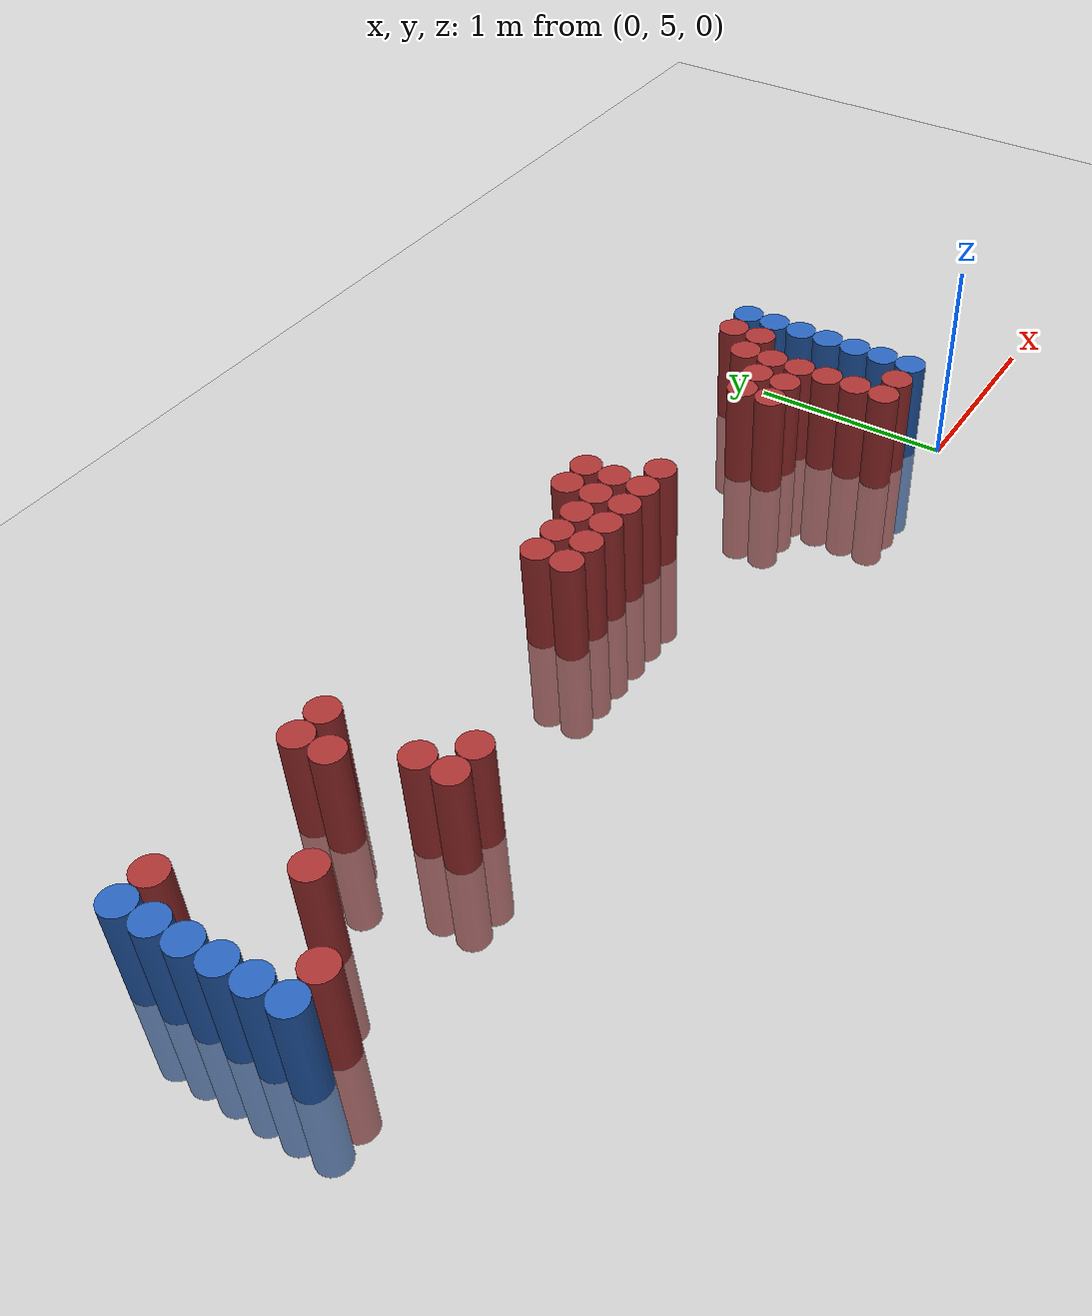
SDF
<sdf version="1.6">
 <world name="default">
  <model name="ground_plane">
   <static>1</static>
   <link name="link">
    <collision name="collision">
     <geometry><plane><normal>0 0 1</normal><size>100 100</size></plane></geometry>
     <surface><friction><ode><mu>100</mu><mu2>50</mu2></ode></friction></surface>
    </collision>
    <visual name="visual">
     <cast_shadows>0</cast_shadows>
     <geometry><plane><normal>0 0 1</normal><size>100 100</size></plane></geometry>
     <material>
      <script><uri>file://media/materials/scripts/gazebo.material</uri><name>Gazebo/Grey</name></script>
     </material>
    </visual>
   </link>
  </model>
  <model name="unit_cylinder_97">
   <static>1</static>
   <pose>-4.425000 5.325000 0.000000 0.000000 0.000000 0.000000</pose>
   <link name="link">
    <inertial>
     <mass>1</mass>
     <inertia><ixx>0.145833</ixx><ixy>0</ixy><ixz>0</ixz><iyy>0.145833</iyy><iyz>0</iyz><izz>0.125</izz></inertia>
    </inertial>
    <collision name="collision">
     <geometry><cylinder><radius>0.075000</radius><length>1</length></cylinder></geometry>
    </collision>
    <visual name="visual">
     <geometry><cylinder><radius>0.075000</radius><length>1</length></cylinder></geometry>
     <material>
      <ambient>0.152000 0.379000 0.720000 1</ambient>
      <diffuse>0.152000 0.379000 0.720000 1</diffuse>
     </material>
     <material>
      <script><name>Gazebo/Grey</name><uri>file://media/materials/scripts/gazebo.material</uri></script>
     </material>
    </visual>
   </link>
  </model>
  <model name="unit_cylinder_98">
   <static>1</static>
   <pose>-4.425000 5.475000 0.000000 0.000000 0.000000 0.000000</pose>
   <link name="link">
    <inertial>
     <mass>1</mass>
     <inertia><ixx>0.145833</ixx><ixy>0</ixy><ixz>0</ixz><iyy>0.145833</iyy><iyz>0</iyz><izz>0.125</izz></inertia>
    </inertial>
    <collision name="collision">
     <geometry><cylinder><radius>0.075000</radius><length>1</length></cylinder></geometry>
    </collision>
    <visual name="visual">
     <geometry><cylinder><radius>0.075000</radius><length>1</length></cylinder></geometry>
     <material>
      <ambient>0.152000 0.379000 0.720000 1</ambient>
      <diffuse>0.152000 0.379000 0.720000 1</diffuse>
     </material>
     <material>
      <script><name>Gazebo/Grey</name><uri>file://media/materials/scripts/gazebo.material</uri></script>
     </material>
    </visual>
   </link>
  </model>
  <model name="unit_cylinder_99">
   <static>1</static>
   <pose>-4.425000 5.625000 0.000000 0.000000 0.000000 0.000000</pose>
   <link name="link">
    <inertial>
     <mass>1</mass>
     <inertia><ixx>0.145833</ixx><ixy>0</ixy><ixz>0</ixz><iyy>0.145833</iyy><iyz>0</iyz><izz>0.125</izz></inertia>
    </inertial>
    <collision name="collision">
     <geometry><cylinder><radius>0.075000</radius><length>1</length></cylinder></geometry>
    </collision>
    <visual name="visual">
     <geometry><cylinder><radius>0.075000</radius><length>1</length></cylinder></geometry>
     <material>
      <ambient>0.152000 0.379000 0.720000 1</ambient>
      <diffuse>0.152000 0.379000 0.720000 1</diffuse>
     </material>
     <material>
      <script><name>Gazebo/Grey</name><uri>file://media/materials/scripts/gazebo.material</uri></script>
     </material>
    </visual>
   </link>
  </model>
  <model name="unit_cylinder_100">
   <static>1</static>
   <pose>-4.425000 5.775000 0.000000 0.000000 0.000000 0.000000</pose>
   <link name="link">
    <inertial>
     <mass>1</mass>
     <inertia><ixx>0.145833</ixx><ixy>0</ixy><ixz>0</ixz><iyy>0.145833</iyy><iyz>0</iyz><izz>0.125</izz></inertia>
    </inertial>
    <collision name="collision">
     <geometry><cylinder><radius>0.075000</radius><length>1</length></cylinder></geometry>
    </collision>
    <visual name="visual">
     <geometry><cylinder><radius>0.075000</radius><length>1</length></cylinder></geometry>
     <material>
      <ambient>0.152000 0.379000 0.720000 1</ambient>
      <diffuse>0.152000 0.379000 0.720000 1</diffuse>
     </material>
     <material>
      <script><name>Gazebo/Grey</name><uri>file://media/materials/scripts/gazebo.material</uri></script>
     </material>
    </visual>
   </link>
  </model>
  <model name="unit_cylinder_101">
   <static>1</static>
   <pose>-4.425000 5.925000 0.000000 0.000000 0.000000 0.000000</pose>
   <link name="link">
    <inertial>
     <mass>1</mass>
     <inertia><ixx>0.145833</ixx><ixy>0</ixy><ixz>0</ixz><iyy>0.145833</iyy><iyz>0</iyz><izz>0.125</izz></inertia>
    </inertial>
    <collision name="collision">
     <geometry><cylinder><radius>0.075000</radius><length>1</length></cylinder></geometry>
    </collision>
    <visual name="visual">
     <geometry><cylinder><radius>0.075000</radius><length>1</length></cylinder></geometry>
     <material>
      <ambient>0.152000 0.379000 0.720000 1</ambient>
      <diffuse>0.152000 0.379000 0.720000 1</diffuse>
     </material>
     <material>
      <script><name>Gazebo/Grey</name><uri>file://media/materials/scripts/gazebo.material</uri></script>
     </material>
    </visual>
   </link>
  </model>
  <model name="unit_cylinder_102">
   <static>1</static>
   <pose>-4.425000 6.075000 0.000000 0.000000 0.000000 0.000000</pose>
   <link name="link">
    <inertial>
     <mass>1</mass>
     <inertia><ixx>0.145833</ixx><ixy>0</ixy><ixz>0</ixz><iyy>0.145833</iyy><iyz>0</iyz><izz>0.125</izz></inertia>
    </inertial>
    <collision name="collision">
     <geometry><cylinder><radius>0.075000</radius><length>1</length></cylinder></geometry>
    </collision>
    <visual name="visual">
     <geometry><cylinder><radius>0.075000</radius><length>1</length></cylinder></geometry>
     <material>
      <ambient>0.152000 0.379000 0.720000 1</ambient>
      <diffuse>0.152000 0.379000 0.720000 1</diffuse>
     </material>
     <material>
      <script><name>Gazebo/Grey</name><uri>file://media/materials/scripts/gazebo.material</uri></script>
     </material>
    </visual>
   </link>
  </model>
  <model name="unit_cylinder_127">
   <static>1</static>
   <pose>-4.275000 5.325000 0.000000 0.000000 0.000000 0.000000</pose>
   <link name="link">
    <inertial>
     <mass>1</mass>
     <inertia><ixx>0.145833</ixx><ixy>0</ixy><ixz>0</ixz><iyy>0.145833</iyy><iyz>0</iyz><izz>0.125</izz></inertia>
    </inertial>
    <collision name="collision">
     <geometry><cylinder><radius>0.075000</radius><length>1</length></cylinder></geometry>
    </collision>
    <visual name="visual">
     <geometry><cylinder><radius>0.075000</radius><length>1</length></cylinder></geometry>
     <material>
      <ambient>0.648000 0.192000 0.192000 1</ambient>
      <diffuse>0.648000 0.192000 0.192000 1</diffuse>
     </material>
     <material>
      <script><name>Gazebo/Grey</name><uri>file://media/materials/scripts/gazebo.material</uri></script>
     </material>
    </visual>
   </link>
  </model>
  <model name="unit_cylinder_128">
   <static>1</static>
   <pose>-4.275000 6.075000 0.000000 0.000000 0.000000 0.000000</pose>
   <link name="link">
    <inertial>
     <mass>1</mass>
     <inertia><ixx>0.145833</ixx><ixy>0</ixy><ixz>0</ixz><iyy>0.145833</iyy><iyz>0</iyz><izz>0.125</izz></inertia>
    </inertial>
    <collision name="collision">
     <geometry><cylinder><radius>0.075000</radius><length>1</length></cylinder></geometry>
    </collision>
    <visual name="visual">
     <geometry><cylinder><radius>0.075000</radius><length>1</length></cylinder></geometry>
     <material>
      <ambient>0.648000 0.192000 0.192000 1</ambient>
      <diffuse>0.648000 0.192000 0.192000 1</diffuse>
     </material>
     <material>
      <script><name>Gazebo/Grey</name><uri>file://media/materials/scripts/gazebo.material</uri></script>
     </material>
    </visual>
   </link>
  </model>
  <model name="unit_cylinder_145">
   <static>1</static>
   <pose>-3.975000 5.625000 0.000000 0.000000 0.000000 0.000000</pose>
   <link name="link">
    <inertial>
     <mass>1</mass>
     <inertia><ixx>0.145833</ixx><ixy>0</ixy><ixz>0</ixz><iyy>0.145833</iyy><iyz>0</iyz><izz>0.125</izz></inertia>
    </inertial>
    <collision name="collision">
     <geometry><cylinder><radius>0.075000</radius><length>1</length></cylinder></geometry>
    </collision>
    <visual name="visual">
     <geometry><cylinder><radius>0.075000</radius><length>1</length></cylinder></geometry>
     <material>
      <ambient>0.648000 0.192000 0.192000 1</ambient>
      <diffuse>0.648000 0.192000 0.192000 1</diffuse>
     </material>
     <material>
      <script><name>Gazebo/Grey</name><uri>file://media/materials/scripts/gazebo.material</uri></script>
     </material>
    </visual>
   </link>
  </model>
  <model name="unit_cylinder_157">
   <static>1</static>
   <pose>-3.525000 5.925000 0.000000 0.000000 0.000000 0.000000</pose>
   <link name="link">
    <inertial>
     <mass>1</mass>
     <inertia><ixx>0.145833</ixx><ixy>0</ixy><ixz>0</ixz><iyy>0.145833</iyy><iyz>0</iyz><izz>0.125</izz></inertia>
    </inertial>
    <collision name="collision">
     <geometry><cylinder><radius>0.075000</radius><length>1</length></cylinder></geometry>
    </collision>
    <visual name="visual">
     <geometry><cylinder><radius>0.075000</radius><length>1</length></cylinder></geometry>
     <material>
      <ambient>0.648000 0.192000 0.192000 1</ambient>
      <diffuse>0.648000 0.192000 0.192000 1</diffuse>
     </material>
     <material>
      <script><name>Gazebo/Grey</name><uri>file://media/materials/scripts/gazebo.material</uri></script>
     </material>
    </visual>
   </link>
  </model>
  <model name="unit_cylinder_158">
   <static>1</static>
   <pose>-3.525000 6.075000 0.000000 0.000000 0.000000 0.000000</pose>
   <link name="link">
    <inertial>
     <mass>1</mass>
     <inertia><ixx>0.145833</ixx><ixy>0</ixy><ixz>0</ixz><iyy>0.145833</iyy><iyz>0</iyz><izz>0.125</izz></inertia>
    </inertial>
    <collision name="collision">
     <geometry><cylinder><radius>0.075000</radius><length>1</length></cylinder></geometry>
    </collision>
    <visual name="visual">
     <geometry><cylinder><radius>0.075000</radius><length>1</length></cylinder></geometry>
     <material>
      <ambient>0.648000 0.192000 0.192000 1</ambient>
      <diffuse>0.648000 0.192000 0.192000 1</diffuse>
     </material>
     <material>
      <script><name>Gazebo/Grey</name><uri>file://media/materials/scripts/gazebo.material</uri></script>
     </material>
    </visual>
   </link>
  </model>
  <model name="unit_cylinder_162">
   <static>1</static>
   <pose>-3.375000 5.475000 0.000000 0.000000 0.000000 0.000000</pose>
   <link name="link">
    <inertial>
     <mass>1</mass>
     <inertia><ixx>0.145833</ixx><ixy>0</ixy><ixz>0</ixz><iyy>0.145833</iyy><iyz>0</iyz><izz>0.125</izz></inertia>
    </inertial>
    <collision name="collision">
     <geometry><cylinder><radius>0.075000</radius><length>1</length></cylinder></geometry>
    </collision>
    <visual name="visual">
     <geometry><cylinder><radius>0.075000</radius><length>1</length></cylinder></geometry>
     <material>
      <ambient>0.648000 0.192000 0.192000 1</ambient>
      <diffuse>0.648000 0.192000 0.192000 1</diffuse>
     </material>
     <material>
      <script><name>Gazebo/Grey</name><uri>file://media/materials/scripts/gazebo.material</uri></script>
     </material>
    </visual>
   </link>
  </model>
  <model name="unit_cylinder_163">
   <static>1</static>
   <pose>-3.375000 5.625000 0.000000 0.000000 0.000000 0.000000</pose>
   <link name="link">
    <inertial>
     <mass>1</mass>
     <inertia><ixx>0.145833</ixx><ixy>0</ixy><ixz>0</ixz><iyy>0.145833</iyy><iyz>0</iyz><izz>0.125</izz></inertia>
    </inertial>
    <collision name="collision">
     <geometry><cylinder><radius>0.075000</radius><length>1</length></cylinder></geometry>
    </collision>
    <visual name="visual">
     <geometry><cylinder><radius>0.075000</radius><length>1</length></cylinder></geometry>
     <material>
      <ambient>0.648000 0.192000 0.192000 1</ambient>
      <diffuse>0.648000 0.192000 0.192000 1</diffuse>
     </material>
     <material>
      <script><name>Gazebo/Grey</name><uri>file://media/materials/scripts/gazebo.material</uri></script>
     </material>
    </visual>
   </link>
  </model>
  <model name="unit_cylinder_164">
   <static>1</static>
   <pose>-3.375000 6.075000 0.000000 0.000000 0.000000 0.000000</pose>
   <link name="link">
    <inertial>
     <mass>1</mass>
     <inertia><ixx>0.145833</ixx><ixy>0</ixy><ixz>0</ixz><iyy>0.145833</iyy><iyz>0</iyz><izz>0.125</izz></inertia>
    </inertial>
    <collision name="collision">
     <geometry><cylinder><radius>0.075000</radius><length>1</length></cylinder></geometry>
    </collision>
    <visual name="visual">
     <geometry><cylinder><radius>0.075000</radius><length>1</length></cylinder></geometry>
     <material>
      <ambient>0.648000 0.192000 0.192000 1</ambient>
      <diffuse>0.648000 0.192000 0.192000 1</diffuse>
     </material>
     <material>
      <script><name>Gazebo/Grey</name><uri>file://media/materials/scripts/gazebo.material</uri></script>
     </material>
    </visual>
   </link>
  </model>
  <model name="unit_cylinder_172">
   <static>1</static>
   <pose>-3.225000 5.475000 0.000000 0.000000 0.000000 0.000000</pose>
   <link name="link">
    <inertial>
     <mass>1</mass>
     <inertia><ixx>0.145833</ixx><ixy>0</ixy><ixz>0</ixz><iyy>0.145833</iyy><iyz>0</iyz><izz>0.125</izz></inertia>
    </inertial>
    <collision name="collision">
     <geometry><cylinder><radius>0.075000</radius><length>1</length></cylinder></geometry>
    </collision>
    <visual name="visual">
     <geometry><cylinder><radius>0.075000</radius><length>1</length></cylinder></geometry>
     <material>
      <ambient>0.648000 0.192000 0.192000 1</ambient>
      <diffuse>0.648000 0.192000 0.192000 1</diffuse>
     </material>
     <material>
      <script><name>Gazebo/Grey</name><uri>file://media/materials/scripts/gazebo.material</uri></script>
     </material>
    </visual>
   </link>
  </model>
  <model name="unit_cylinder_184">
   <static>1</static>
   <pose>-2.175000 5.775000 0.000000 0.000000 0.000000 0.000000</pose>
   <link name="link">
    <inertial>
     <mass>1</mass>
     <inertia><ixx>0.145833</ixx><ixy>0</ixy><ixz>0</ixz><iyy>0.145833</iyy><iyz>0</iyz><izz>0.125</izz></inertia>
    </inertial>
    <collision name="collision">
     <geometry><cylinder><radius>0.075000</radius><length>1</length></cylinder></geometry>
    </collision>
    <visual name="visual">
     <geometry><cylinder><radius>0.075000</radius><length>1</length></cylinder></geometry>
     <material>
      <ambient>0.648000 0.192000 0.192000 1</ambient>
      <diffuse>0.648000 0.192000 0.192000 1</diffuse>
     </material>
     <material>
      <script><name>Gazebo/Grey</name><uri>file://media/materials/scripts/gazebo.material</uri></script>
     </material>
    </visual>
   </link>
  </model>
  <model name="unit_cylinder_185">
   <static>1</static>
   <pose>-2.175000 5.925000 0.000000 0.000000 0.000000 0.000000</pose>
   <link name="link">
    <inertial>
     <mass>1</mass>
     <inertia><ixx>0.145833</ixx><ixy>0</ixy><ixz>0</ixz><iyy>0.145833</iyy><iyz>0</iyz><izz>0.125</izz></inertia>
    </inertial>
    <collision name="collision">
     <geometry><cylinder><radius>0.075000</radius><length>1</length></cylinder></geometry>
    </collision>
    <visual name="visual">
     <geometry><cylinder><radius>0.075000</radius><length>1</length></cylinder></geometry>
     <material>
      <ambient>0.648000 0.192000 0.192000 1</ambient>
      <diffuse>0.648000 0.192000 0.192000 1</diffuse>
     </material>
     <material>
      <script><name>Gazebo/Grey</name><uri>file://media/materials/scripts/gazebo.material</uri></script>
     </material>
    </visual>
   </link>
  </model>
  <model name="unit_cylinder_189">
   <static>1</static>
   <pose>-2.025000 5.775000 0.000000 0.000000 0.000000 0.000000</pose>
   <link name="link">
    <inertial>
     <mass>1</mass>
     <inertia><ixx>0.145833</ixx><ixy>0</ixy><ixz>0</ixz><iyy>0.145833</iyy><iyz>0</iyz><izz>0.125</izz></inertia>
    </inertial>
    <collision name="collision">
     <geometry><cylinder><radius>0.075000</radius><length>1</length></cylinder></geometry>
    </collision>
    <visual name="visual">
     <geometry><cylinder><radius>0.075000</radius><length>1</length></cylinder></geometry>
     <material>
      <ambient>0.648000 0.192000 0.192000 1</ambient>
      <diffuse>0.648000 0.192000 0.192000 1</diffuse>
     </material>
     <material>
      <script><name>Gazebo/Grey</name><uri>file://media/materials/scripts/gazebo.material</uri></script>
     </material>
    </visual>
   </link>
  </model>
  <model name="unit_cylinder_190">
   <static>1</static>
   <pose>-2.025000 5.925000 0.000000 0.000000 0.000000 0.000000</pose>
   <link name="link">
    <inertial>
     <mass>1</mass>
     <inertia><ixx>0.145833</ixx><ixy>0</ixy><ixz>0</ixz><iyy>0.145833</iyy><iyz>0</iyz><izz>0.125</izz></inertia>
    </inertial>
    <collision name="collision">
     <geometry><cylinder><radius>0.075000</radius><length>1</length></cylinder></geometry>
    </collision>
    <visual name="visual">
     <geometry><cylinder><radius>0.075000</radius><length>1</length></cylinder></geometry>
     <material>
      <ambient>0.648000 0.192000 0.192000 1</ambient>
      <diffuse>0.648000 0.192000 0.192000 1</diffuse>
     </material>
     <material>
      <script><name>Gazebo/Grey</name><uri>file://media/materials/scripts/gazebo.material</uri></script>
     </material>
    </visual>
   </link>
  </model>
  <model name="unit_cylinder_194">
   <static>1</static>
   <pose>-1.875000 5.775000 0.000000 0.000000 0.000000 0.000000</pose>
   <link name="link">
    <inertial>
     <mass>1</mass>
     <inertia><ixx>0.145833</ixx><ixy>0</ixy><ixz>0</ixz><iyy>0.145833</iyy><iyz>0</iyz><izz>0.125</izz></inertia>
    </inertial>
    <collision name="collision">
     <geometry><cylinder><radius>0.075000</radius><length>1</length></cylinder></geometry>
    </collision>
    <visual name="visual">
     <geometry><cylinder><radius>0.075000</radius><length>1</length></cylinder></geometry>
     <material>
      <ambient>0.648000 0.192000 0.192000 1</ambient>
      <diffuse>0.648000 0.192000 0.192000 1</diffuse>
     </material>
     <material>
      <script><name>Gazebo/Grey</name><uri>file://media/materials/scripts/gazebo.material</uri></script>
     </material>
    </visual>
   </link>
  </model>
  <model name="unit_cylinder_195">
   <static>1</static>
   <pose>-1.875000 5.925000 0.000000 0.000000 0.000000 0.000000</pose>
   <link name="link">
    <inertial>
     <mass>1</mass>
     <inertia><ixx>0.145833</ixx><ixy>0</ixy><ixz>0</ixz><iyy>0.145833</iyy><iyz>0</iyz><izz>0.125</izz></inertia>
    </inertial>
    <collision name="collision">
     <geometry><cylinder><radius>0.075000</radius><length>1</length></cylinder></geometry>
    </collision>
    <visual name="visual">
     <geometry><cylinder><radius>0.075000</radius><length>1</length></cylinder></geometry>
     <material>
      <ambient>0.648000 0.192000 0.192000 1</ambient>
      <diffuse>0.648000 0.192000 0.192000 1</diffuse>
     </material>
     <material>
      <script><name>Gazebo/Grey</name><uri>file://media/materials/scripts/gazebo.material</uri></script>
     </material>
    </visual>
   </link>
  </model>
  <model name="unit_cylinder_198">
   <static>1</static>
   <pose>-1.725000 5.775000 0.000000 0.000000 0.000000 0.000000</pose>
   <link name="link">
    <inertial>
     <mass>1</mass>
     <inertia><ixx>0.145833</ixx><ixy>0</ixy><ixz>0</ixz><iyy>0.145833</iyy><iyz>0</iyz><izz>0.125</izz></inertia>
    </inertial>
    <collision name="collision">
     <geometry><cylinder><radius>0.075000</radius><length>1</length></cylinder></geometry>
    </collision>
    <visual name="visual">
     <geometry><cylinder><radius>0.075000</radius><length>1</length></cylinder></geometry>
     <material>
      <ambient>0.648000 0.192000 0.192000 1</ambient>
      <diffuse>0.648000 0.192000 0.192000 1</diffuse>
     </material>
     <material>
      <script><name>Gazebo/Grey</name><uri>file://media/materials/scripts/gazebo.material</uri></script>
     </material>
    </visual>
   </link>
  </model>
  <model name="unit_cylinder_199">
   <static>1</static>
   <pose>-1.725000 5.925000 0.000000 0.000000 0.000000 0.000000</pose>
   <link name="link">
    <inertial>
     <mass>1</mass>
     <inertia><ixx>0.145833</ixx><ixy>0</ixy><ixz>0</ixz><iyy>0.145833</iyy><iyz>0</iyz><izz>0.125</izz></inertia>
    </inertial>
    <collision name="collision">
     <geometry><cylinder><radius>0.075000</radius><length>1</length></cylinder></geometry>
    </collision>
    <visual name="visual">
     <geometry><cylinder><radius>0.075000</radius><length>1</length></cylinder></geometry>
     <material>
      <ambient>0.648000 0.192000 0.192000 1</ambient>
      <diffuse>0.648000 0.192000 0.192000 1</diffuse>
     </material>
     <material>
      <script><name>Gazebo/Grey</name><uri>file://media/materials/scripts/gazebo.material</uri></script>
     </material>
    </visual>
   </link>
  </model>
  <model name="unit_cylinder_200">
   <static>1</static>
   <pose>-1.725000 6.075000 0.000000 0.000000 0.000000 0.000000</pose>
   <link name="link">
    <inertial>
     <mass>1</mass>
     <inertia><ixx>0.145833</ixx><ixy>0</ixy><ixz>0</ixz><iyy>0.145833</iyy><iyz>0</iyz><izz>0.125</izz></inertia>
    </inertial>
    <collision name="collision">
     <geometry><cylinder><radius>0.075000</radius><length>1</length></cylinder></geometry>
    </collision>
    <visual name="visual">
     <geometry><cylinder><radius>0.075000</radius><length>1</length></cylinder></geometry>
     <material>
      <ambient>0.648000 0.192000 0.192000 1</ambient>
      <diffuse>0.648000 0.192000 0.192000 1</diffuse>
     </material>
     <material>
      <script><name>Gazebo/Grey</name><uri>file://media/materials/scripts/gazebo.material</uri></script>
     </material>
    </visual>
   </link>
  </model>
  <model name="unit_cylinder_202">
   <static>1</static>
   <pose>-1.575000 5.775000 0.000000 0.000000 0.000000 0.000000</pose>
   <link name="link">
    <inertial>
     <mass>1</mass>
     <inertia><ixx>0.145833</ixx><ixy>0</ixy><ixz>0</ixz><iyy>0.145833</iyy><iyz>0</iyz><izz>0.125</izz></inertia>
    </inertial>
    <collision name="collision">
     <geometry><cylinder><radius>0.075000</radius><length>1</length></cylinder></geometry>
    </collision>
    <visual name="visual">
     <geometry><cylinder><radius>0.075000</radius><length>1</length></cylinder></geometry>
     <material>
      <ambient>0.648000 0.192000 0.192000 1</ambient>
      <diffuse>0.648000 0.192000 0.192000 1</diffuse>
     </material>
     <material>
      <script><name>Gazebo/Grey</name><uri>file://media/materials/scripts/gazebo.material</uri></script>
     </material>
    </visual>
   </link>
  </model>
  <model name="unit_cylinder_203">
   <static>1</static>
   <pose>-1.575000 5.925000 0.000000 0.000000 0.000000 0.000000</pose>
   <link name="link">
    <inertial>
     <mass>1</mass>
     <inertia><ixx>0.145833</ixx><ixy>0</ixy><ixz>0</ixz><iyy>0.145833</iyy><iyz>0</iyz><izz>0.125</izz></inertia>
    </inertial>
    <collision name="collision">
     <geometry><cylinder><radius>0.075000</radius><length>1</length></cylinder></geometry>
    </collision>
    <visual name="visual">
     <geometry><cylinder><radius>0.075000</radius><length>1</length></cylinder></geometry>
     <material>
      <ambient>0.648000 0.192000 0.192000 1</ambient>
      <diffuse>0.648000 0.192000 0.192000 1</diffuse>
     </material>
     <material>
      <script><name>Gazebo/Grey</name><uri>file://media/materials/scripts/gazebo.material</uri></script>
     </material>
    </visual>
   </link>
  </model>
  <model name="unit_cylinder_204">
   <static>1</static>
   <pose>-1.575000 6.075000 0.000000 0.000000 0.000000 0.000000</pose>
   <link name="link">
    <inertial>
     <mass>1</mass>
     <inertia><ixx>0.145833</ixx><ixy>0</ixy><ixz>0</ixz><iyy>0.145833</iyy><iyz>0</iyz><izz>0.125</izz></inertia>
    </inertial>
    <collision name="collision">
     <geometry><cylinder><radius>0.075000</radius><length>1</length></cylinder></geometry>
    </collision>
    <visual name="visual">
     <geometry><cylinder><radius>0.075000</radius><length>1</length></cylinder></geometry>
     <material>
      <ambient>0.648000 0.192000 0.192000 1</ambient>
      <diffuse>0.648000 0.192000 0.192000 1</diffuse>
     </material>
     <material>
      <script><name>Gazebo/Grey</name><uri>file://media/materials/scripts/gazebo.material</uri></script>
     </material>
    </visual>
   </link>
  </model>
  <model name="unit_cylinder_205">
   <static>1</static>
   <pose>-1.425000 5.775000 0.000000 0.000000 0.000000 0.000000</pose>
   <link name="link">
    <inertial>
     <mass>1</mass>
     <inertia><ixx>0.145833</ixx><ixy>0</ixy><ixz>0</ixz><iyy>0.145833</iyy><iyz>0</iyz><izz>0.125</izz></inertia>
    </inertial>
    <collision name="collision">
     <geometry><cylinder><radius>0.075000</radius><length>1</length></cylinder></geometry>
    </collision>
    <visual name="visual">
     <geometry><cylinder><radius>0.075000</radius><length>1</length></cylinder></geometry>
     <material>
      <ambient>0.648000 0.192000 0.192000 1</ambient>
      <diffuse>0.648000 0.192000 0.192000 1</diffuse>
     </material>
     <material>
      <script><name>Gazebo/Grey</name><uri>file://media/materials/scripts/gazebo.material</uri></script>
     </material>
    </visual>
   </link>
  </model>
  <model name="unit_cylinder_220">
   <static>1</static>
   <pose>-0.675000 5.625000 0.000000 0.000000 0.000000 0.000000</pose>
   <link name="link">
    <inertial>
     <mass>1</mass>
     <inertia><ixx>0.145833</ixx><ixy>0</ixy><ixz>0</ixz><iyy>0.145833</iyy><iyz>0</iyz><izz>0.125</izz></inertia>
    </inertial>
    <collision name="collision">
     <geometry><cylinder><radius>0.075000</radius><length>1</length></cylinder></geometry>
    </collision>
    <visual name="visual">
     <geometry><cylinder><radius>0.075000</radius><length>1</length></cylinder></geometry>
     <material>
      <ambient>0.648000 0.192000 0.192000 1</ambient>
      <diffuse>0.648000 0.192000 0.192000 1</diffuse>
     </material>
     <material>
      <script><name>Gazebo/Grey</name><uri>file://media/materials/scripts/gazebo.material</uri></script>
     </material>
    </visual>
   </link>
  </model>
  <model name="unit_cylinder_221">
   <static>1</static>
   <pose>-0.675000 5.775000 0.000000 0.000000 0.000000 0.000000</pose>
   <link name="link">
    <inertial>
     <mass>1</mass>
     <inertia><ixx>0.145833</ixx><ixy>0</ixy><ixz>0</ixz><iyy>0.145833</iyy><iyz>0</iyz><izz>0.125</izz></inertia>
    </inertial>
    <collision name="collision">
     <geometry><cylinder><radius>0.075000</radius><length>1</length></cylinder></geometry>
    </collision>
    <visual name="visual">
     <geometry><cylinder><radius>0.075000</radius><length>1</length></cylinder></geometry>
     <material>
      <ambient>0.648000 0.192000 0.192000 1</ambient>
      <diffuse>0.648000 0.192000 0.192000 1</diffuse>
     </material>
     <material>
      <script><name>Gazebo/Grey</name><uri>file://media/materials/scripts/gazebo.material</uri></script>
     </material>
    </visual>
   </link>
  </model>
  <model name="unit_cylinder_225">
   <static>1</static>
   <pose>-0.525000 5.625000 0.000000 0.000000 0.000000 0.000000</pose>
   <link name="link">
    <inertial>
     <mass>1</mass>
     <inertia><ixx>0.145833</ixx><ixy>0</ixy><ixz>0</ixz><iyy>0.145833</iyy><iyz>0</iyz><izz>0.125</izz></inertia>
    </inertial>
    <collision name="collision">
     <geometry><cylinder><radius>0.075000</radius><length>1</length></cylinder></geometry>
    </collision>
    <visual name="visual">
     <geometry><cylinder><radius>0.075000</radius><length>1</length></cylinder></geometry>
     <material>
      <ambient>0.648000 0.192000 0.192000 1</ambient>
      <diffuse>0.648000 0.192000 0.192000 1</diffuse>
     </material>
     <material>
      <script><name>Gazebo/Grey</name><uri>file://media/materials/scripts/gazebo.material</uri></script>
     </material>
    </visual>
   </link>
  </model>
  <model name="unit_cylinder_226">
   <static>1</static>
   <pose>-0.525000 5.775000 0.000000 0.000000 0.000000 0.000000</pose>
   <link name="link">
    <inertial>
     <mass>1</mass>
     <inertia><ixx>0.145833</ixx><ixy>0</ixy><ixz>0</ixz><iyy>0.145833</iyy><iyz>0</iyz><izz>0.125</izz></inertia>
    </inertial>
    <collision name="collision">
     <geometry><cylinder><radius>0.075000</radius><length>1</length></cylinder></geometry>
    </collision>
    <visual name="visual">
     <geometry><cylinder><radius>0.075000</radius><length>1</length></cylinder></geometry>
     <material>
      <ambient>0.648000 0.192000 0.192000 1</ambient>
      <diffuse>0.648000 0.192000 0.192000 1</diffuse>
     </material>
     <material>
      <script><name>Gazebo/Grey</name><uri>file://media/materials/scripts/gazebo.material</uri></script>
     </material>
    </visual>
   </link>
  </model>
  <model name="unit_cylinder_230">
   <static>1</static>
   <pose>-0.375000 5.175000 0.000000 0.000000 0.000000 0.000000</pose>
   <link name="link">
    <inertial>
     <mass>1</mass>
     <inertia><ixx>0.145833</ixx><ixy>0</ixy><ixz>0</ixz><iyy>0.145833</iyy><iyz>0</iyz><izz>0.125</izz></inertia>
    </inertial>
    <collision name="collision">
     <geometry><cylinder><radius>0.075000</radius><length>1</length></cylinder></geometry>
    </collision>
    <visual name="visual">
     <geometry><cylinder><radius>0.075000</radius><length>1</length></cylinder></geometry>
     <material>
      <ambient>0.648000 0.192000 0.192000 1</ambient>
      <diffuse>0.648000 0.192000 0.192000 1</diffuse>
     </material>
     <material>
      <script><name>Gazebo/Grey</name><uri>file://media/materials/scripts/gazebo.material</uri></script>
     </material>
    </visual>
   </link>
  </model>
  <model name="unit_cylinder_231">
   <static>1</static>
   <pose>-0.375000 5.325000 0.000000 0.000000 0.000000 0.000000</pose>
   <link name="link">
    <inertial>
     <mass>1</mass>
     <inertia><ixx>0.145833</ixx><ixy>0</ixy><ixz>0</ixz><iyy>0.145833</iyy><iyz>0</iyz><izz>0.125</izz></inertia>
    </inertial>
    <collision name="collision">
     <geometry><cylinder><radius>0.075000</radius><length>1</length></cylinder></geometry>
    </collision>
    <visual name="visual">
     <geometry><cylinder><radius>0.075000</radius><length>1</length></cylinder></geometry>
     <material>
      <ambient>0.648000 0.192000 0.192000 1</ambient>
      <diffuse>0.648000 0.192000 0.192000 1</diffuse>
     </material>
     <material>
      <script><name>Gazebo/Grey</name><uri>file://media/materials/scripts/gazebo.material</uri></script>
     </material>
    </visual>
   </link>
  </model>
  <model name="unit_cylinder_232">
   <static>1</static>
   <pose>-0.375000 5.475000 0.000000 0.000000 0.000000 0.000000</pose>
   <link name="link">
    <inertial>
     <mass>1</mass>
     <inertia><ixx>0.145833</ixx><ixy>0</ixy><ixz>0</ixz><iyy>0.145833</iyy><iyz>0</iyz><izz>0.125</izz></inertia>
    </inertial>
    <collision name="collision">
     <geometry><cylinder><radius>0.075000</radius><length>1</length></cylinder></geometry>
    </collision>
    <visual name="visual">
     <geometry><cylinder><radius>0.075000</radius><length>1</length></cylinder></geometry>
     <material>
      <ambient>0.648000 0.192000 0.192000 1</ambient>
      <diffuse>0.648000 0.192000 0.192000 1</diffuse>
     </material>
     <material>
      <script><name>Gazebo/Grey</name><uri>file://media/materials/scripts/gazebo.material</uri></script>
     </material>
    </visual>
   </link>
  </model>
  <model name="unit_cylinder_233">
   <static>1</static>
   <pose>-0.375000 5.625000 0.000000 0.000000 0.000000 0.000000</pose>
   <link name="link">
    <inertial>
     <mass>1</mass>
     <inertia><ixx>0.145833</ixx><ixy>0</ixy><ixz>0</ixz><iyy>0.145833</iyy><iyz>0</iyz><izz>0.125</izz></inertia>
    </inertial>
    <collision name="collision">
     <geometry><cylinder><radius>0.075000</radius><length>1</length></cylinder></geometry>
    </collision>
    <visual name="visual">
     <geometry><cylinder><radius>0.075000</radius><length>1</length></cylinder></geometry>
     <material>
      <ambient>0.648000 0.192000 0.192000 1</ambient>
      <diffuse>0.648000 0.192000 0.192000 1</diffuse>
     </material>
     <material>
      <script><name>Gazebo/Grey</name><uri>file://media/materials/scripts/gazebo.material</uri></script>
     </material>
    </visual>
   </link>
  </model>
  <model name="unit_cylinder_234">
   <static>1</static>
   <pose>-0.375000 5.775000 0.000000 0.000000 0.000000 0.000000</pose>
   <link name="link">
    <inertial>
     <mass>1</mass>
     <inertia><ixx>0.145833</ixx><ixy>0</ixy><ixz>0</ixz><iyy>0.145833</iyy><iyz>0</iyz><izz>0.125</izz></inertia>
    </inertial>
    <collision name="collision">
     <geometry><cylinder><radius>0.075000</radius><length>1</length></cylinder></geometry>
    </collision>
    <visual name="visual">
     <geometry><cylinder><radius>0.075000</radius><length>1</length></cylinder></geometry>
     <material>
      <ambient>0.648000 0.192000 0.192000 1</ambient>
      <diffuse>0.648000 0.192000 0.192000 1</diffuse>
     </material>
     <material>
      <script><name>Gazebo/Grey</name><uri>file://media/materials/scripts/gazebo.material</uri></script>
     </material>
    </visual>
   </link>
  </model>
  <model name="unit_cylinder_235">
   <static>1</static>
   <pose>-0.375000 5.925000 0.000000 0.000000 0.000000 0.000000</pose>
   <link name="link">
    <inertial>
     <mass>1</mass>
     <inertia><ixx>0.145833</ixx><ixy>0</ixy><ixz>0</ixz><iyy>0.145833</iyy><iyz>0</iyz><izz>0.125</izz></inertia>
    </inertial>
    <collision name="collision">
     <geometry><cylinder><radius>0.075000</radius><length>1</length></cylinder></geometry>
    </collision>
    <visual name="visual">
     <geometry><cylinder><radius>0.075000</radius><length>1</length></cylinder></geometry>
     <material>
      <ambient>0.648000 0.192000 0.192000 1</ambient>
      <diffuse>0.648000 0.192000 0.192000 1</diffuse>
     </material>
     <material>
      <script><name>Gazebo/Grey</name><uri>file://media/materials/scripts/gazebo.material</uri></script>
     </material>
    </visual>
   </link>
  </model>
  <model name="unit_cylinder_242">
   <static>1</static>
   <pose>-0.225000 5.175000 0.000000 0.000000 0.000000 0.000000</pose>
   <link name="link">
    <inertial>
     <mass>1</mass>
     <inertia><ixx>0.145833</ixx><ixy>0</ixy><ixz>0</ixz><iyy>0.145833</iyy><iyz>0</iyz><izz>0.125</izz></inertia>
    </inertial>
    <collision name="collision">
     <geometry><cylinder><radius>0.075000</radius><length>1</length></cylinder></geometry>
    </collision>
    <visual name="visual">
     <geometry><cylinder><radius>0.075000</radius><length>1</length></cylinder></geometry>
     <material>
      <ambient>0.648000 0.192000 0.192000 1</ambient>
      <diffuse>0.648000 0.192000 0.192000 1</diffuse>
     </material>
     <material>
      <script><name>Gazebo/Grey</name><uri>file://media/materials/scripts/gazebo.material</uri></script>
     </material>
    </visual>
   </link>
  </model>
  <model name="unit_cylinder_243">
   <static>1</static>
   <pose>-0.225000 5.925000 0.000000 0.000000 0.000000 0.000000</pose>
   <link name="link">
    <inertial>
     <mass>1</mass>
     <inertia><ixx>0.145833</ixx><ixy>0</ixy><ixz>0</ixz><iyy>0.145833</iyy><iyz>0</iyz><izz>0.125</izz></inertia>
    </inertial>
    <collision name="collision">
     <geometry><cylinder><radius>0.075000</radius><length>1</length></cylinder></geometry>
    </collision>
    <visual name="visual">
     <geometry><cylinder><radius>0.075000</radius><length>1</length></cylinder></geometry>
     <material>
      <ambient>0.648000 0.192000 0.192000 1</ambient>
      <diffuse>0.648000 0.192000 0.192000 1</diffuse>
     </material>
     <material>
      <script><name>Gazebo/Grey</name><uri>file://media/materials/scripts/gazebo.material</uri></script>
     </material>
    </visual>
   </link>
  </model>
  <model name="unit_cylinder_244">
   <static>1</static>
   <pose>-0.225000 6.075000 0.000000 0.000000 0.000000 0.000000</pose>
   <link name="link">
    <inertial>
     <mass>1</mass>
     <inertia><ixx>0.145833</ixx><ixy>0</ixy><ixz>0</ixz><iyy>0.145833</iyy><iyz>0</iyz><izz>0.125</izz></inertia>
    </inertial>
    <collision name="collision">
     <geometry><cylinder><radius>0.075000</radius><length>1</length></cylinder></geometry>
    </collision>
    <visual name="visual">
     <geometry><cylinder><radius>0.075000</radius><length>1</length></cylinder></geometry>
     <material>
      <ambient>0.648000 0.192000 0.192000 1</ambient>
      <diffuse>0.648000 0.192000 0.192000 1</diffuse>
     </material>
     <material>
      <script><name>Gazebo/Grey</name><uri>file://media/materials/scripts/gazebo.material</uri></script>
     </material>
    </visual>
   </link>
  </model>
  <model name="unit_cylinder_261">
   <static>1</static>
   <pose>-0.075000 5.175000 0.000000 0.000000 0.000000 0.000000</pose>
   <link name="link">
    <inertial>
     <mass>1</mass>
     <inertia><ixx>0.145833</ixx><ixy>0</ixy><ixz>0</ixz><iyy>0.145833</iyy><iyz>0</iyz><izz>0.125</izz></inertia>
    </inertial>
    <collision name="collision">
     <geometry><cylinder><radius>0.075000</radius><length>1</length></cylinder></geometry>
    </collision>
    <visual name="visual">
     <geometry><cylinder><radius>0.075000</radius><length>1</length></cylinder></geometry>
     <material>
      <ambient>0.152000 0.379000 0.720000 1</ambient>
      <diffuse>0.152000 0.379000 0.720000 1</diffuse>
     </material>
     <material>
      <script><name>Gazebo/Grey</name><uri>file://media/materials/scripts/gazebo.material</uri></script>
     </material>
    </visual>
   </link>
  </model>
  <model name="unit_cylinder_262">
   <static>1</static>
   <pose>-0.075000 5.325000 0.000000 0.000000 0.000000 0.000000</pose>
   <link name="link">
    <inertial>
     <mass>1</mass>
     <inertia><ixx>0.145833</ixx><ixy>0</ixy><ixz>0</ixz><iyy>0.145833</iyy><iyz>0</iyz><izz>0.125</izz></inertia>
    </inertial>
    <collision name="collision">
     <geometry><cylinder><radius>0.075000</radius><length>1</length></cylinder></geometry>
    </collision>
    <visual name="visual">
     <geometry><cylinder><radius>0.075000</radius><length>1</length></cylinder></geometry>
     <material>
      <ambient>0.152000 0.379000 0.720000 1</ambient>
      <diffuse>0.152000 0.379000 0.720000 1</diffuse>
     </material>
     <material>
      <script><name>Gazebo/Grey</name><uri>file://media/materials/scripts/gazebo.material</uri></script>
     </material>
    </visual>
   </link>
  </model>
  <model name="unit_cylinder_263">
   <static>1</static>
   <pose>-0.075000 5.475000 0.000000 0.000000 0.000000 0.000000</pose>
   <link name="link">
    <inertial>
     <mass>1</mass>
     <inertia><ixx>0.145833</ixx><ixy>0</ixy><ixz>0</ixz><iyy>0.145833</iyy><iyz>0</iyz><izz>0.125</izz></inertia>
    </inertial>
    <collision name="collision">
     <geometry><cylinder><radius>0.075000</radius><length>1</length></cylinder></geometry>
    </collision>
    <visual name="visual">
     <geometry><cylinder><radius>0.075000</radius><length>1</length></cylinder></geometry>
     <material>
      <ambient>0.152000 0.379000 0.720000 1</ambient>
      <diffuse>0.152000 0.379000 0.720000 1</diffuse>
     </material>
     <material>
      <script><name>Gazebo/Grey</name><uri>file://media/materials/scripts/gazebo.material</uri></script>
     </material>
    </visual>
   </link>
  </model>
  <model name="unit_cylinder_264">
   <static>1</static>
   <pose>-0.075000 5.625000 0.000000 0.000000 0.000000 0.000000</pose>
   <link name="link">
    <inertial>
     <mass>1</mass>
     <inertia><ixx>0.145833</ixx><ixy>0</ixy><ixz>0</ixz><iyy>0.145833</iyy><iyz>0</iyz><izz>0.125</izz></inertia>
    </inertial>
    <collision name="collision">
     <geometry><cylinder><radius>0.075000</radius><length>1</length></cylinder></geometry>
    </collision>
    <visual name="visual">
     <geometry><cylinder><radius>0.075000</radius><length>1</length></cylinder></geometry>
     <material>
      <ambient>0.152000 0.379000 0.720000 1</ambient>
      <diffuse>0.152000 0.379000 0.720000 1</diffuse>
     </material>
     <material>
      <script><name>Gazebo/Grey</name><uri>file://media/materials/scripts/gazebo.material</uri></script>
     </material>
    </visual>
   </link>
  </model>
  <model name="unit_cylinder_265">
   <static>1</static>
   <pose>-0.075000 5.775000 0.000000 0.000000 0.000000 0.000000</pose>
   <link name="link">
    <inertial>
     <mass>1</mass>
     <inertia><ixx>0.145833</ixx><ixy>0</ixy><ixz>0</ixz><iyy>0.145833</iyy><iyz>0</iyz><izz>0.125</izz></inertia>
    </inertial>
    <collision name="collision">
     <geometry><cylinder><radius>0.075000</radius><length>1</length></cylinder></geometry>
    </collision>
    <visual name="visual">
     <geometry><cylinder><radius>0.075000</radius><length>1</length></cylinder></geometry>
     <material>
      <ambient>0.152000 0.379000 0.720000 1</ambient>
      <diffuse>0.152000 0.379000 0.720000 1</diffuse>
     </material>
     <material>
      <script><name>Gazebo/Grey</name><uri>file://media/materials/scripts/gazebo.material</uri></script>
     </material>
    </visual>
   </link>
  </model>
  <model name="unit_cylinder_266">
   <static>1</static>
   <pose>-0.075000 5.925000 0.000000 0.000000 0.000000 0.000000</pose>
   <link name="link">
    <inertial>
     <mass>1</mass>
     <inertia><ixx>0.145833</ixx><ixy>0</ixy><ixz>0</ixz><iyy>0.145833</iyy><iyz>0</iyz><izz>0.125</izz></inertia>
    </inertial>
    <collision name="collision">
     <geometry><cylinder><radius>0.075000</radius><length>1</length></cylinder></geometry>
    </collision>
    <visual name="visual">
     <geometry><cylinder><radius>0.075000</radius><length>1</length></cylinder></geometry>
     <material>
      <ambient>0.152000 0.379000 0.720000 1</ambient>
      <diffuse>0.152000 0.379000 0.720000 1</diffuse>
     </material>
     <material>
      <script><name>Gazebo/Grey</name><uri>file://media/materials/scripts/gazebo.material</uri></script>
     </material>
    </visual>
   </link>
  </model>
  <model name="unit_cylinder_267">
   <static>1</static>
   <pose>-0.075000 6.075000 0.000000 0.000000 0.000000 0.000000</pose>
   <link name="link">
    <inertial>
     <mass>1</mass>
     <inertia><ixx>0.145833</ixx><ixy>0</ixy><ixz>0</ixz><iyy>0.145833</iyy><iyz>0</iyz><izz>0.125</izz></inertia>
    </inertial>
    <collision name="collision">
     <geometry><cylinder><radius>0.075000</radius><length>1</length></cylinder></geometry>
    </collision>
    <visual name="visual">
     <geometry><cylinder><radius>0.075000</radius><length>1</length></cylinder></geometry>
     <material>
      <ambient>0.152000 0.379000 0.720000 1</ambient>
      <diffuse>0.152000 0.379000 0.720000 1</diffuse>
     </material>
     <material>
      <script><name>Gazebo/Grey</name><uri>file://media/materials/scripts/gazebo.material</uri></script>
     </material>
    </visual>
   </link>
  </model>
 </world>
</sdf>
